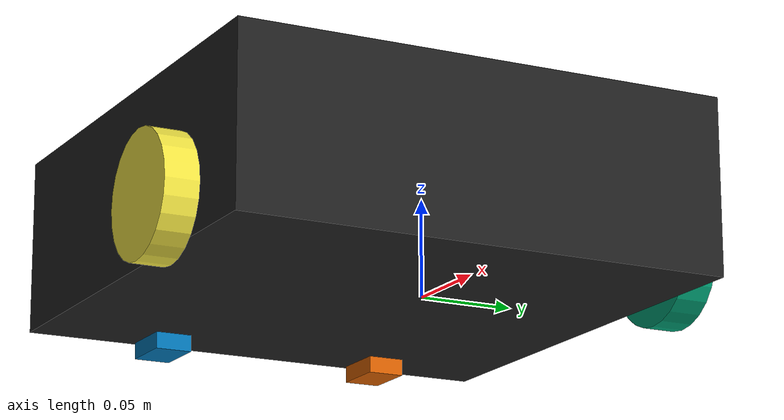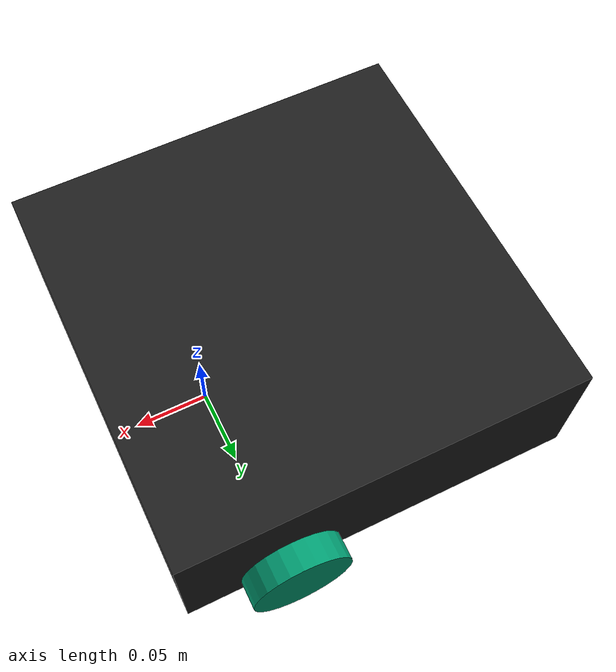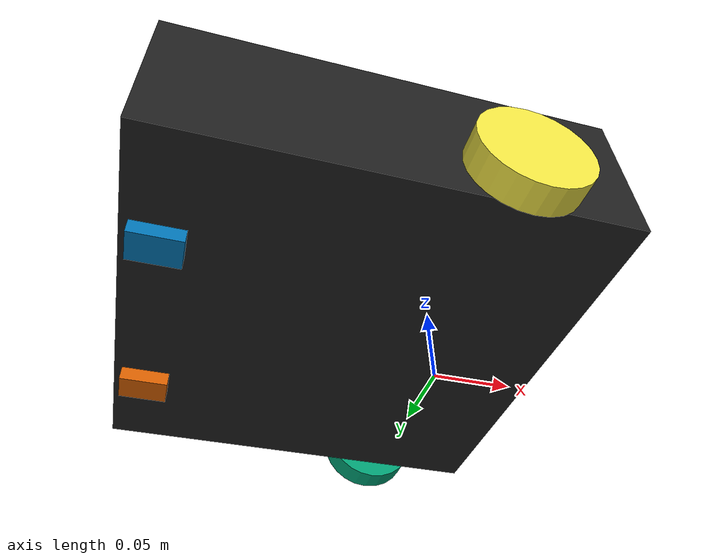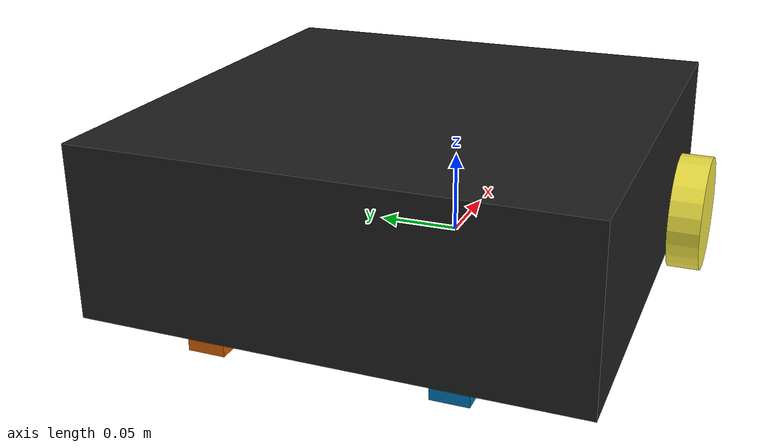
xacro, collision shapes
<?xml version="1.0" ?>
<robot name="turtlebot3_waffle"
  xmlns:xacro="http://ros.org/wiki/xacro">
  <xacro:include filename="$(find turtlebot3_description)/urdf/common_properties.xacro"/>
  <xacro:include filename="$(find turtlebot3_description)/urdf/turtlebot3_waffle.gazebo.xacro"/>

  <xacro:property name="r200_cam_rgb_px" value="0.005"/>
  <xacro:property name="r200_cam_rgb_py" value="0.018"/>
  <xacro:property name="r200_cam_rgb_pz" value="0.013"/>
  <xacro:property name="r200_cam_depth_offset" value="0.01"/>
  <xacro:property name="PI" value="3.14159265358979323"/>
  <xacro:property name="M_PI" value="3.14159265358979323"/>

  <link name="base_footprint"/>

  <joint name="base_joint" type="fixed">
    <parent link="base_footprint"/>
    <child link="base_link" />
    <origin xyz="0 0 0.010" rpy="0 0 0"/>
  </joint>

  <link name="base_link">
    <visual>
      <origin xyz="-0.064 0 0.0" rpy="0 0 0"/>
      <geometry>
        <mesh filename="package://turtlebot3_description/meshes/bases/waffle_base.stl" scale="0.001 0.001 0.001"/>
      </geometry>
      <material name="light_black"/>
    </visual>

    <collision>
      <origin xyz="-0.064 0 0.047" rpy="0 0 0"/>
      <geometry>
        <box size="0.266 0.266 0.094"/>
      </geometry>
    </collision>

    <inertial>
      <origin xyz="0 0 0" rpy="0 0 0"/>
      <mass value="1.3729096e+00"/>
      <inertia ixx="8.7002718e-03" ixy="-4.7576583e-05" ixz="1.1160499e-04" iyy="8.6195418e-03" iyz="-3.5422299e-06" izz="1.4612727e-02" />
    </inertial>
  </link>

  <joint name="wheel_left_joint" type="continuous">
    <parent link="base_link"/>
    <child link="wheel_left_link"/>
    <origin xyz="0.0 0.144 0.023" rpy="-1.57 0 0"/>
    <axis xyz="0 0 1"/>
  </joint>

  <link name="wheel_left_link">
    <visual>
      <origin xyz="0 0 0" rpy="1.57 0 0"/>
      <geometry>
        <mesh filename="package://turtlebot3_description/meshes/wheels/left_tire.stl" scale="0.001 0.001 0.001"/>
      </geometry>
      <material name="dark"/>
    </visual>

    <collision>
      <origin xyz="0 0 0" rpy="0 0 0"/>
      <geometry>
        <cylinder length="0.018" radius="0.033"/>
      </geometry>
    </collision>

    <inertial>
      <origin xyz="0 0 0" />
      <mass value="2.8498940e-02" />
      <inertia ixx="1.1175580e-05" ixy="-4.2369783e-11" ixz="-5.9381719e-09" iyy="1.1192413e-05" iyz="-1.4400107e-11" izz="2.0712558e-05" />
    </inertial>
  </link>

  <joint name="wheel_right_joint" type="continuous">
    <parent link="base_link"/>
    <child link="wheel_right_link"/>
    <origin xyz="0.0 -0.144 0.023" rpy="-1.57 0 0"/>
    <axis xyz="0 0 1"/>
  </joint>

  <link name="wheel_right_link">
    <visual>
      <origin xyz="0 0 0" rpy="1.57 0 0"/>
      <geometry>
        <mesh filename="package://turtlebot3_description/meshes/wheels/right_tire.stl" scale="0.001 0.001 0.001"/>
      </geometry>
      <material name="dark"/>
    </visual>

    <collision>
      <origin xyz="0 0 0" rpy="0 0 0"/>
      <geometry>
        <cylinder length="0.018" radius="0.033"/>
      </geometry>
    </collision>

    <inertial>
      <origin xyz="0 0 0" />
      <mass value="2.8498940e-02" />
      <inertia ixx="1.1175580e-05" ixy="-4.2369783e-11" ixz="-5.9381719e-09" iyy="1.1192413e-05" iyz="-1.4400107e-11" izz="2.0712558e-05" />
    </inertial>
  </link>

  <joint name="caster_back_right_joint" type="fixed">
    <parent link="base_link"/>
    <child link="caster_back_right_link"/>
    <origin xyz="-0.177 -0.064 -0.004" rpy="-1.57 0 0"/>
  </joint>

  <link name="caster_back_right_link">
    <collision>
      <origin xyz="0 0.001 0" rpy="0 0 0"/>
      <geometry>
        <box size="0.030 0.009 0.020"/>
      </geometry>
    </collision>

    <inertial>
      <origin xyz="0 0 0" />
      <mass value="0.005" />
      <inertia ixx="0.001" ixy="0.0" ixz="0.0" iyy="0.001" iyz="0.0" izz="0.001" />
    </inertial>
  </link>

  <joint name="caster_back_left_joint" type="fixed">
    <parent link="base_link"/>
    <child link="caster_back_left_link"/>
    <origin xyz="-0.177 0.064 -0.004" rpy="-1.57 0 0"/>
  </joint>

  <link name="caster_back_left_link">
    <collision>
      <origin xyz="0 0.001 0" rpy="0 0 0"/>
      <geometry>
        <box size="0.030 0.009 0.020"/>
      </geometry>
    </collision>

    <inertial>
      <origin xyz="0 0 0" />
      <mass value="0.005" />
      <inertia ixx="0.001" ixy="0.0" ixz="0.0" iyy="0.001" iyz="0.0" izz="0.001" />
    </inertial>
  </link>

  <joint name="imu_joint" type="fixed">
    <parent link="base_link"/>
    <child link="imu_link"/>
    <origin xyz="0.0 0 0.068" rpy="0 0 0"/>
  </joint>

  <link name="imu_link"/>

  <!-- This inertial field needs doesn't contain reliable data!! -->

  <xacro:macro name="generic_camera" params="name parent *origin ros_topic cam_info_topic update_rate res_x res_y image_format hfov vfov">
    <joint name="${name}_joint" type="fixed">
      <xacro:insert_block name="origin"/>
      <parent link="${parent}"/>
      <child link="${name}_link"/>
    </joint>

    <link name="${name}_link"/>

    <joint name="${name}_optical_joint" type="fixed">
      <origin xyz="0 0 0" rpy="${-M_PI/2} 0.0 ${-M_PI/2}" />
      <parent link="${name}_link" />
      <child link="${name}_optical_frame"/>
    </joint>

    <link name="${name}_optical_frame"/>

    <gazebo reference="${name}_link">
        <visual>
        <origin xyz="0 0 0" rpy="0.0 0.0 0.0"/>
          <geometry>
          <box size="0.02 0.02 0.02"/>
          </geometry>
          <material name="dark"/>
        </visual>
        <sensor name="${name}_sensor" type="wideanglecamera">
            <update_rate>${update_rate}</update_rate>
            <visualize>true</visualize>
            <camera>
                <horizontal_fov>${hfov * M_PI/180.0}</horizontal_fov>
                <vertical_fov>${vfov * M_PI/180.0}</vertical_fov>
                <image>
                    <width>${res_x}</width>
                    <height>${res_y}</height>
                    <format>${image_format}</format>
                </image>
                <clip>
                    <near>0.01</near>
                    <far>100</far>
                </clip>
            </camera>
            <plugin filename="libgazebo_ros_camera.so" name="${name}_camera_controller">
                <cameraName>${name}</cameraName>
                <alwaysOn>true</alwaysOn>
                <updateRate>${update_rate}</updateRate>
                <imageTopicName>/${name}/${ros_topic}</imageTopicName>
                <cameraInfoTopicName>/${name}/${cam_info_topic}</cameraInfoTopicName>
                <frameName>/${name}_optical_frame</frameName>
                <robotNamespace>/</robotNamespace>
            </plugin>
        </sensor>
    </gazebo>
  </xacro:macro>

  <xacro:generic_camera name="camera0" parent="base_link" ros_topic="image_raw" cam_info_topic="camera_info" update_rate="10" res_x="1280" res_y="960" image_format="R8G8B8" hfov="180" vfov="130">
    <origin xyz="0.08 0.0 0.11" rpy="0.0 ${PI/4} 0.0"/>
  </xacro:generic_camera>

  <xacro:generic_camera name="camera1" parent="base_link" ros_topic="image_raw" cam_info_topic="camera_info" update_rate="10" res_x="1280" res_y="960" image_format="R8G8B8" hfov="180" vfov="130">
    <origin xyz="-0.06 -0.14 0.11" rpy="0.0 ${PI/4} ${- PI / 2}"/>
  </xacro:generic_camera>

  <xacro:generic_camera name="camera2" parent="base_link" ros_topic="image_raw" cam_info_topic="camera_info" update_rate="10" res_x="1280" res_y="960" image_format="R8G8B8" hfov="180" vfov="130">
    <origin xyz="-0.2 0.0 0.11" rpy="0.0 ${PI/4} ${- PI}"/>
  </xacro:generic_camera>

  <xacro:generic_camera name="camera3" parent="base_link" ros_topic="image_raw" cam_info_topic="camera_info" update_rate="10" res_x="1280" res_y="960" image_format="R8G8B8" hfov="180" vfov="130">
    <origin xyz="-0.06 0.14 0.11" rpy="0.0 ${PI/4} ${PI / 2}"/>
  </xacro:generic_camera>

</robot>
